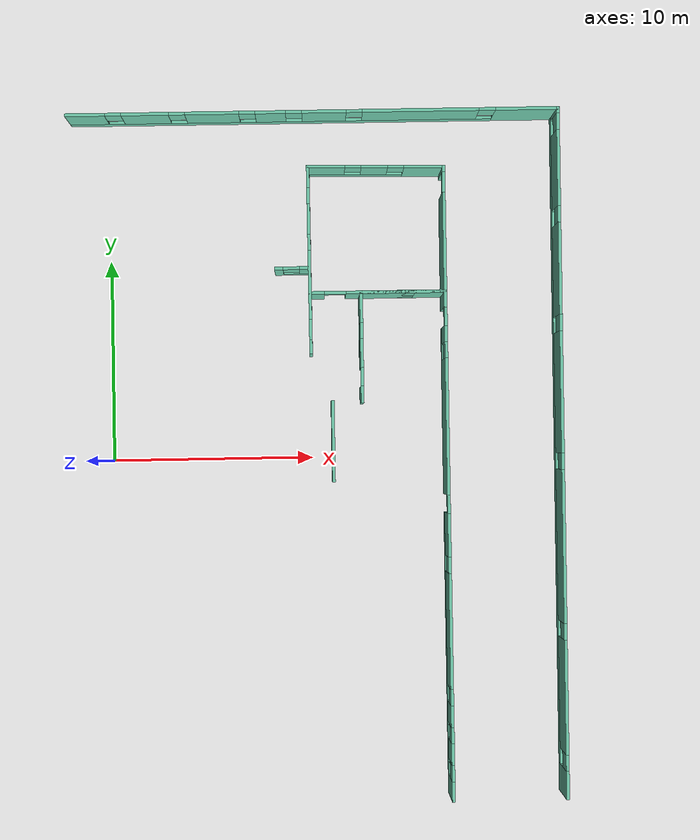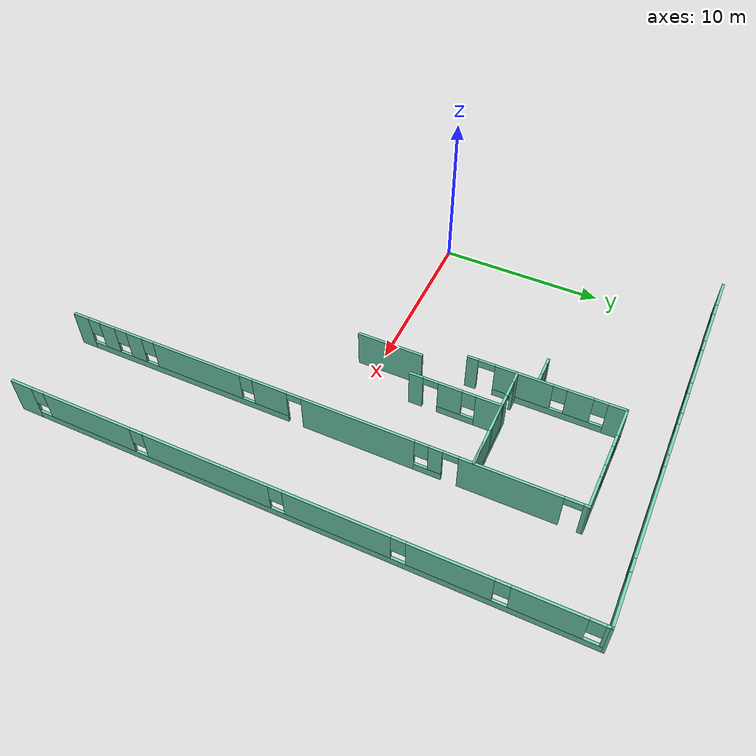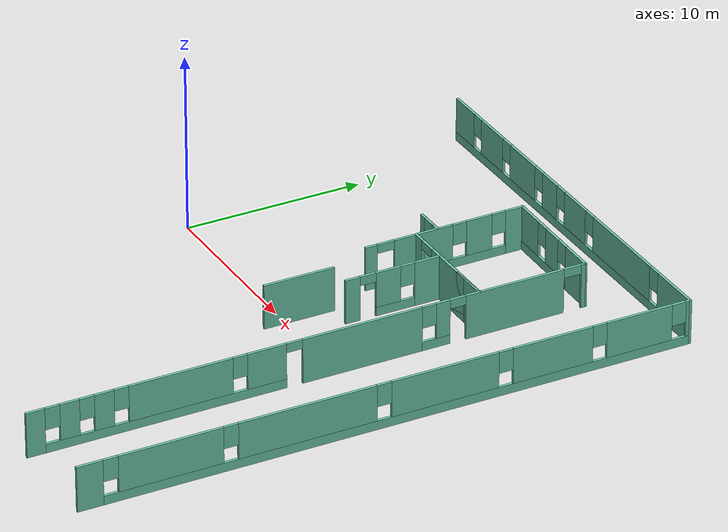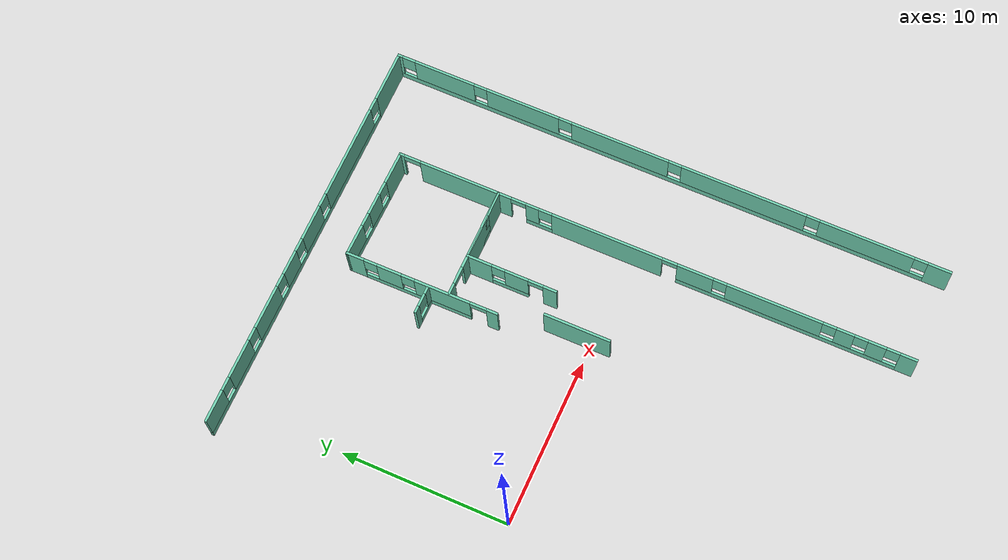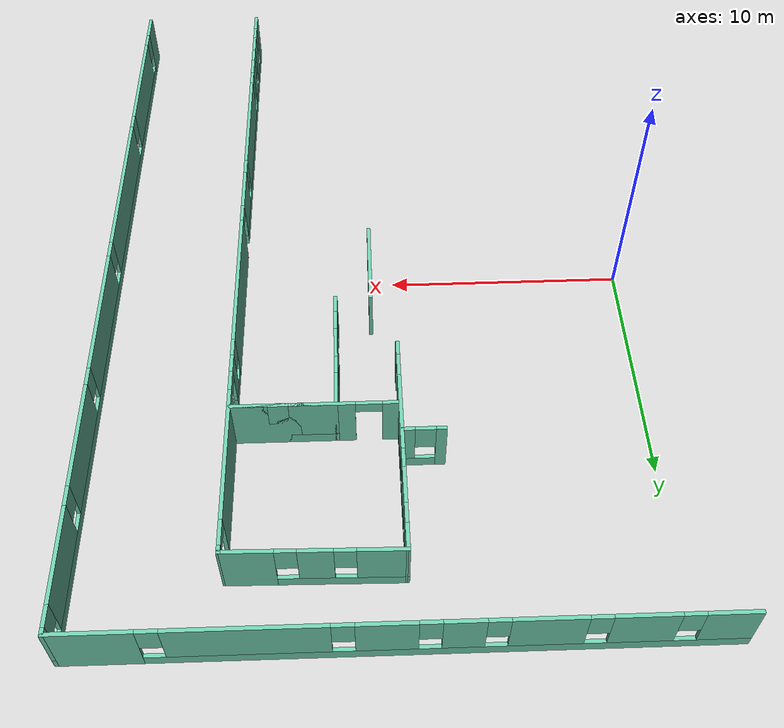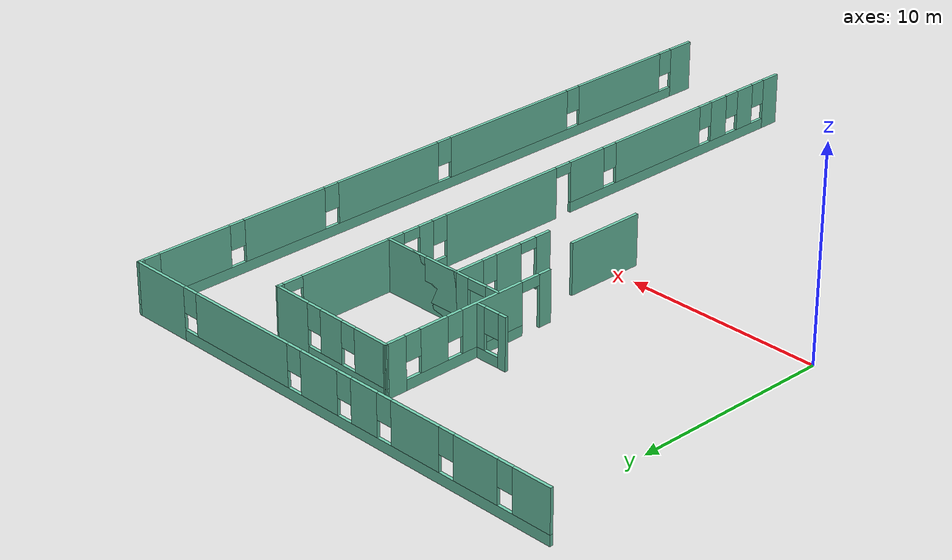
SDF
<sdf version="1.6">
 <model name="Hospital_empty">
  <pose>-0.033999 0.051012 0 0 -0 0</pose>
  <link name="Wall_2">
   <pose>22.303 -0.012012 0 0 -0 1.5708</pose>
   <visual name="Wall_2_Visual_0">
    <pose>-16.2974 0 1.25 0 -0 0</pose>
    <geometry><box><size>1.40521 0.15 2.5</size></box></geometry>
    <material>
     <script><uri>file://media/materials/scripts/gazebo.material</uri><name>Gazebo/Grey</name></script>
     <ambient>0.435294 0.796078 0.67451 1</ambient>
    </material>
   </visual>
   <collision name="Wall_2_Collision_0">
    <geometry><box><size>1.40521 0.15 2.5</size></box></geometry>
    <pose>-16.2974 0 1.25 0 -0 0</pose>
   </collision>
   <visual name="Wall_2_Visual_1">
    <pose>0.702607 0 0.25 0 -0 0</pose>
    <geometry><box><size>32.5948 0.15 0.5</size></box></geometry>
    <material>
     <script><uri>file://media/materials/scripts/gazebo.material</uri><name>Gazebo/Grey</name></script>
     <ambient>0.435294 0.796078 0.67451 1</ambient>
    </material>
   </visual>
   <collision name="Wall_2_Collision_1">
    <geometry><box><size>32.5948 0.15 0.5</size></box></geometry>
    <pose>0.702607 0 0.25 0 -0 0</pose>
   </collision>
   <visual name="Wall_2_Visual_2">
    <pose>-11.9773 0 1.5 0 -0 0</pose>
    <geometry><box><size>5.635 0.15 2</size></box></geometry>
    <material>
     <script><uri>file://media/materials/scripts/gazebo.material</uri><name>Gazebo/Grey</name></script>
     <ambient>0.435294 0.796078 0.67451 1</ambient>
    </material>
   </visual>
   <collision name="Wall_2_Collision_2">
    <geometry><box><size>5.635 0.15 2</size></box></geometry>
    <pose>-11.9773 0 1.5 0 -0 0</pose>
   </collision>
   <visual name="Wall_2_Visual_3">
    <pose>-4.57479 0 1.5 0 -0 0</pose>
    <geometry><box><size>7.57 0.15 2</size></box></geometry>
    <material>
     <script><uri>file://media/materials/scripts/gazebo.material</uri><name>Gazebo/Grey</name></script>
     <ambient>0.435294 0.796078 0.67451 1</ambient>
    </material>
   </visual>
   <collision name="Wall_2_Collision_3">
    <geometry><box><size>7.57 0.15 2</size></box></geometry>
    <pose>-4.57479 0 1.5 0 -0 0</pose>
   </collision>
   <visual name="Wall_2_Visual_4">
    <pose>3.00771 0 1.5 0 -0 0</pose>
    <geometry><box><size>5.995 0.15 2</size></box></geometry>
    <material>
     <script><uri>file://media/materials/scripts/gazebo.material</uri><name>Gazebo/Grey</name></script>
     <ambient>0.435294 0.796078 0.67451 1</ambient>
    </material>
   </visual>
   <collision name="Wall_2_Collision_4">
    <geometry><box><size>5.995 0.15 2</size></box></geometry>
    <pose>3.00771 0 1.5 0 -0 0</pose>
   </collision>
   <visual name="Wall_2_Visual_5">
    <pose>9.0669 0 1.5 0 -0 0</pose>
    <geometry><box><size>4.52336 0.15 2</size></box></geometry>
    <material>
     <script><uri>file://media/materials/scripts/gazebo.material</uri><name>Gazebo/Grey</name></script>
     <ambient>0.435294 0.796078 0.67451 1</ambient>
    </material>
   </visual>
   <collision name="Wall_2_Collision_5">
    <geometry><box><size>4.52336 0.15 2</size></box></geometry>
    <pose>9.0669 0 1.5 0 -0 0</pose>
   </collision>
   <visual name="Wall_2_Visual_6">
    <pose>14.0011 0 1.5 0 -0 0</pose>
    <geometry><box><size>3.745 0.15 2</size></box></geometry>
    <material>
     <script><uri>file://media/materials/scripts/gazebo.material</uri><name>Gazebo/Grey</name></script>
     <ambient>0.435294 0.796078 0.67451 1</ambient>
    </material>
   </visual>
   <collision name="Wall_2_Collision_6">
    <geometry><box><size>3.745 0.15 2</size></box></geometry>
    <pose>14.0011 0 1.5 0 -0 0</pose>
   </collision>
   <visual name="Wall_2_Visual_7">
    <pose>16.8368 0 1.5 0 -0 0</pose>
    <geometry><box><size>0.326426 0.15 2</size></box></geometry>
    <material>
     <script><uri>file://media/materials/scripts/gazebo.material</uri><name>Gazebo/Grey</name></script>
     <ambient>0.435294 0.796078 0.67451 1</ambient>
    </material>
   </visual>
   <collision name="Wall_2_Collision_7">
    <geometry><box><size>0.326426 0.15 2</size></box></geometry>
    <pose>16.8368 0 1.5 0 -0 0</pose>
   </collision>
   <visual name="Wall_2_Visual_8">
    <pose>-15.1948 0 1.9 0 -0 0</pose>
    <geometry><box><size>0.8 0.15 1.2</size></box></geometry>
    <material>
     <script><uri>file://media/materials/scripts/gazebo.material</uri><name>Gazebo/Grey</name></script>
     <ambient>0.435294 0.796078 0.67451 1</ambient>
    </material>
   </visual>
   <collision name="Wall_2_Collision_8">
    <geometry><box><size>0.8 0.15 1.2</size></box></geometry>
    <pose>-15.1948 0 1.9 0 -0 0</pose>
   </collision>
   <visual name="Wall_2_Visual_9">
    <pose>-8.75979 0 1.9 0 -0 0</pose>
    <geometry><box><size>0.8 0.15 1.2</size></box></geometry>
    <material>
     <script><uri>file://media/materials/scripts/gazebo.material</uri><name>Gazebo/Grey</name></script>
     <ambient>0.435294 0.796078 0.67451 1</ambient>
    </material>
   </visual>
   <collision name="Wall_2_Collision_9">
    <geometry><box><size>0.8 0.15 1.2</size></box></geometry>
    <pose>-8.75979 0 1.9 0 -0 0</pose>
   </collision>
   <visual name="Wall_2_Visual_10">
    <pose>-0.389785 0 1.9 0 -0 0</pose>
    <geometry><box><size>0.8 0.15 1.2</size></box></geometry>
    <material>
     <script><uri>file://media/materials/scripts/gazebo.material</uri><name>Gazebo/Grey</name></script>
     <ambient>0.435294 0.796078 0.67451 1</ambient>
    </material>
   </visual>
   <collision name="Wall_2_Collision_10">
    <geometry><box><size>0.8 0.15 1.2</size></box></geometry>
    <pose>-0.389785 0 1.9 0 -0 0</pose>
   </collision>
   <visual name="Wall_2_Visual_11">
    <pose>6.40521 0 1.9 0 -0 0</pose>
    <geometry><box><size>0.8 0.15 1.2</size></box></geometry>
    <material>
     <script><uri>file://media/materials/scripts/gazebo.material</uri><name>Gazebo/Grey</name></script>
     <ambient>0.435294 0.796078 0.67451 1</ambient>
    </material>
   </visual>
   <collision name="Wall_2_Collision_11">
    <geometry><box><size>0.8 0.15 1.2</size></box></geometry>
    <pose>6.40521 0 1.9 0 -0 0</pose>
   </collision>
   <visual name="Wall_2_Visual_12">
    <pose>11.7286 0 1.9 0 -0 0</pose>
    <geometry><box><size>0.8 0.15 1.2</size></box></geometry>
    <material>
     <script><uri>file://media/materials/scripts/gazebo.material</uri><name>Gazebo/Grey</name></script>
     <ambient>0.435294 0.796078 0.67451 1</ambient>
    </material>
   </visual>
   <collision name="Wall_2_Collision_12">
    <geometry><box><size>0.8 0.15 1.2</size></box></geometry>
    <pose>11.7286 0 1.9 0 -0 0</pose>
   </collision>
   <visual name="Wall_2_Visual_13">
    <pose>16.2736 0 1.9 0 -0 0</pose>
    <geometry><box><size>0.8 0.15 1.2</size></box></geometry>
    <material>
     <script><uri>file://media/materials/scripts/gazebo.material</uri><name>Gazebo/Grey</name></script>
     <ambient>0.435294 0.796078 0.67451 1</ambient>
    </material>
   </visual>
   <collision name="Wall_2_Collision_13">
    <geometry><box><size>0.8 0.15 1.2</size></box></geometry>
    <pose>16.2736 0 1.9 0 -0 0</pose>
   </collision>
  </link>
  <link name="Wall_3">
   <pose>10.253 16.913 0 0 -0 3.14159</pose>
   <visual name="Wall_3_Visual_0">
    <pose>-10.5614 0 1.25 0 -0 0</pose>
    <geometry><box><size>3.12716 0.15 2.5</size></box></geometry>
    <material>
     <script><uri>file://media/materials/scripts/gazebo.material</uri><name>Gazebo/Grey</name></script>
     <ambient>0.435294 0.796078 0.67451 1</ambient>
    </material>
   </visual>
   <collision name="Wall_3_Collision_0">
    <geometry><box><size>3.12716 0.15 2.5</size></box></geometry>
    <pose>-10.5614 0 1.25 0 -0 0</pose>
   </collision>
   <visual name="Wall_3_Visual_1">
    <pose>1.56358 0 0.25 0 -0 0</pose>
    <geometry><box><size>21.1228 0.15 0.5</size></box></geometry>
    <material>
     <script><uri>file://media/materials/scripts/gazebo.material</uri><name>Gazebo/Grey</name></script>
     <ambient>0.435294 0.796078 0.67451 1</ambient>
    </material>
   </visual>
   <collision name="Wall_3_Collision_1">
    <geometry><box><size>21.1228 0.15 0.5</size></box></geometry>
    <pose>1.56358 0 0.25 0 -0 0</pose>
   </collision>
   <visual name="Wall_3_Visual_2">
    <pose>-5.33534 0 1.5 0 -0 0</pose>
    <geometry><box><size>5.725 0.15 2</size></box></geometry>
    <material>
     <script><uri>file://media/materials/scripts/gazebo.material</uri><name>Gazebo/Grey</name></script>
     <ambient>0.435294 0.796078 0.67451 1</ambient>
    </material>
   </visual>
   <collision name="Wall_3_Collision_2">
    <geometry><box><size>5.725 0.15 2</size></box></geometry>
    <pose>-5.33534 0 1.5 0 -0 0</pose>
   </collision>
   <visual name="Wall_3_Visual_3">
    <pose>-0.584865 0 1.5 0 -0 0</pose>
    <geometry><box><size>2.17595 0.15 2</size></box></geometry>
    <material>
     <script><uri>file://media/materials/scripts/gazebo.material</uri><name>Gazebo/Grey</name></script>
     <ambient>0.435294 0.796078 0.67451 1</ambient>
    </material>
   </visual>
   <collision name="Wall_3_Collision_3">
    <geometry><box><size>2.17595 0.15 2</size></box></geometry>
    <pose>-0.584865 0 1.5 0 -0 0</pose>
   </collision>
   <visual name="Wall_3_Visual_4">
    <pose>2.05094 0 1.5 0 -0 0</pose>
    <geometry><box><size>1.49565 0.15 2</size></box></geometry>
    <material>
     <script><uri>file://media/materials/scripts/gazebo.material</uri><name>Gazebo/Grey</name></script>
     <ambient>0.435294 0.796078 0.67451 1</ambient>
    </material>
   </visual>
   <collision name="Wall_3_Collision_4">
    <geometry><box><size>1.49565 0.15 2</size></box></geometry>
    <pose>2.05094 0 1.5 0 -0 0</pose>
   </collision>
   <visual name="Wall_3_Visual_5">
    <pose>4.9205 0 1.5 0 -0 0</pose>
    <geometry><box><size>2.64348 0.15 2</size></box></geometry>
    <material>
     <script><uri>file://media/materials/scripts/gazebo.material</uri><name>Gazebo/Grey</name></script>
     <ambient>0.435294 0.796078 0.67451 1</ambient>
    </material>
   </visual>
   <collision name="Wall_3_Collision_5">
    <geometry><box><size>2.64348 0.15 2</size></box></geometry>
    <pose>4.9205 0 1.5 0 -0 0</pose>
   </collision>
   <visual name="Wall_3_Visual_6">
    <pose>8.20746 0 1.5 0 -0 0</pose>
    <geometry><box><size>2.33044 0.15 2</size></box></geometry>
    <material>
     <script><uri>file://media/materials/scripts/gazebo.material</uri><name>Gazebo/Grey</name></script>
     <ambient>0.435294 0.796078 0.67451 1</ambient>
    </material>
   </visual>
   <collision name="Wall_3_Collision_6">
    <geometry><box><size>2.33044 0.15 2</size></box></geometry>
    <pose>8.20746 0 1.5 0 -0 0</pose>
   </collision>
   <visual name="Wall_3_Visual_7">
    <pose>11.1488 0 1.5 0 -0 0</pose>
    <geometry><box><size>1.95233 0.15 2</size></box></geometry>
    <material>
     <script><uri>file://media/materials/scripts/gazebo.material</uri><name>Gazebo/Grey</name></script>
     <ambient>0.435294 0.796078 0.67451 1</ambient>
    </material>
   </visual>
   <collision name="Wall_3_Collision_7">
    <geometry><box><size>1.95233 0.15 2</size></box></geometry>
    <pose>11.1488 0 1.5 0 -0 0</pose>
   </collision>
   <visual name="Wall_3_Visual_8">
    <pose>-8.59784 0 1.9 0 -0 0</pose>
    <geometry><box><size>0.8 0.15 1.2</size></box></geometry>
    <material>
     <script><uri>file://media/materials/scripts/gazebo.material</uri><name>Gazebo/Grey</name></script>
     <ambient>0.435294 0.796078 0.67451 1</ambient>
    </material>
   </visual>
   <collision name="Wall_3_Collision_8">
    <geometry><box><size>0.8 0.15 1.2</size></box></geometry>
    <pose>-8.59784 0 1.9 0 -0 0</pose>
   </collision>
   <visual name="Wall_3_Visual_9">
    <pose>-2.07284 0 1.9 0 -0 0</pose>
    <geometry><box><size>0.8 0.15 1.2</size></box></geometry>
    <material>
     <script><uri>file://media/materials/scripts/gazebo.material</uri><name>Gazebo/Grey</name></script>
     <ambient>0.435294 0.796078 0.67451 1</ambient>
    </material>
   </visual>
   <collision name="Wall_3_Collision_9">
    <geometry><box><size>0.8 0.15 1.2</size></box></geometry>
    <pose>-2.07284 0 1.9 0 -0 0</pose>
   </collision>
   <visual name="Wall_3_Visual_10">
    <pose>0.90311 0 1.9 0 -0 0</pose>
    <geometry><box><size>0.8 0.15 1.2</size></box></geometry>
    <material>
     <script><uri>file://media/materials/scripts/gazebo.material</uri><name>Gazebo/Grey</name></script>
     <ambient>0.435294 0.796078 0.67451 1</ambient>
    </material>
   </visual>
   <collision name="Wall_3_Collision_10">
    <geometry><box><size>0.8 0.15 1.2</size></box></geometry>
    <pose>0.90311 0 1.9 0 -0 0</pose>
   </collision>
   <visual name="Wall_3_Visual_11">
    <pose>3.19876 0 1.9 0 -0 0</pose>
    <geometry><box><size>0.8 0.15 1.2</size></box></geometry>
    <material>
     <script><uri>file://media/materials/scripts/gazebo.material</uri><name>Gazebo/Grey</name></script>
     <ambient>0.435294 0.796078 0.67451 1</ambient>
    </material>
   </visual>
   <collision name="Wall_3_Collision_11">
    <geometry><box><size>0.8 0.15 1.2</size></box></geometry>
    <pose>3.19876 0 1.9 0 -0 0</pose>
   </collision>
   <visual name="Wall_3_Visual_12">
    <pose>6.64224 0 1.9 0 -0 0</pose>
    <geometry><box><size>0.8 0.15 1.2</size></box></geometry>
    <material>
     <script><uri>file://media/materials/scripts/gazebo.material</uri><name>Gazebo/Grey</name></script>
     <ambient>0.435294 0.796078 0.67451 1</ambient>
    </material>
   </visual>
   <collision name="Wall_3_Collision_12">
    <geometry><box><size>0.8 0.15 1.2</size></box></geometry>
    <pose>6.64224 0 1.9 0 -0 0</pose>
   </collision>
   <visual name="Wall_3_Visual_13">
    <pose>9.77267 0 1.9 0 -0 0</pose>
    <geometry><box><size>0.8 0.15 1.2</size></box></geometry>
    <material>
     <script><uri>file://media/materials/scripts/gazebo.material</uri><name>Gazebo/Grey</name></script>
     <ambient>0.435294 0.796078 0.67451 1</ambient>
    </material>
   </visual>
   <collision name="Wall_3_Collision_13">
    <geometry><box><size>0.8 0.15 1.2</size></box></geometry>
    <pose>9.77267 0 1.9 0 -0 0</pose>
   </collision>
  </link>
  <link name="Wall_54">
   <pose>16.6784 -1.42889 0 0 -0 1.57237</pose>
   <visual name="Wall_54_Visual_0">
    <pose>-15.1174 0 1.25 0 -0 0</pose>
    <geometry><box><size>1.01516 0.15 2.5</size></box></geometry>
    <material>
     <script><uri>file://media/materials/scripts/gazebo.material</uri><name>Gazebo/Grey</name></script>
     <ambient>0.435294 0.796078 0.67451 1</ambient>
    </material>
   </visual>
   <collision name="Wall_54_Collision_0">
    <geometry><box><size>1.01516 0.15 2.5</size></box></geometry>
    <pose>-15.1174 0 1.25 0 -0 0</pose>
   </collision>
   <visual name="Wall_54_Visual_1">
    <pose>2.81142 0 1.25 0 -0 0</pose>
    <geometry><box><size>6.71487 0.15 2.5</size></box></geometry>
    <material>
     <script><uri>file://media/materials/scripts/gazebo.material</uri><name>Gazebo/Grey</name></script>
     <ambient>0.435294 0.796078 0.67451 1</ambient>
    </material>
   </visual>
   <collision name="Wall_54_Collision_1">
    <geometry><box><size>6.71487 0.15 2.5</size></box></geometry>
    <pose>2.81142 0 1.25 0 -0 0</pose>
   </collision>
   <visual name="Wall_54_Visual_2">
    <pose>11.474 0 1.25 0 -0 0</pose>
    <geometry><box><size>5.63286 0.15 2.5</size></box></geometry>
    <material>
     <script><uri>file://media/materials/scripts/gazebo.material</uri><name>Gazebo/Grey</name></script>
     <ambient>0.435294 0.796078 0.67451 1</ambient>
    </material>
   </visual>
   <collision name="Wall_54_Collision_2">
    <geometry><box><size>5.63286 0.15 2.5</size></box></geometry>
    <pose>11.474 0 1.25 0 -0 0</pose>
   </collision>
   <visual name="Wall_54_Visual_3">
    <pose>15.4602 0 1.25 0 -0 0</pose>
    <geometry><box><size>0.329522 0.15 2.5</size></box></geometry>
    <material>
     <script><uri>file://media/materials/scripts/gazebo.material</uri><name>Gazebo/Grey</name></script>
     <ambient>0.435294 0.796078 0.67451 1</ambient>
    </material>
   </visual>
   <collision name="Wall_54_Collision_3">
    <geometry><box><size>0.329522 0.15 2.5</size></box></geometry>
    <pose>15.4602 0 1.25 0 -0 0</pose>
   </collision>
   <visual name="Wall_54_Visual_4">
    <pose>-8.02793 0 0.25 0 -0 0</pose>
    <geometry><box><size>13.1638 0.15 0.5</size></box></geometry>
    <material>
     <script><uri>file://media/materials/scripts/gazebo.material</uri><name>Gazebo/Grey</name></script>
     <ambient>0.435294 0.796078 0.67451 1</ambient>
    </material>
   </visual>
   <collision name="Wall_54_Collision_4">
    <geometry><box><size>13.1638 0.15 0.5</size></box></geometry>
    <pose>-8.02793 0 0.25 0 -0 0</pose>
   </collision>
   <visual name="Wall_54_Visual_5">
    <pose>6.96319 0 0.25 0 -0 0</pose>
    <geometry><box><size>1.58869 0.15 0.5</size></box></geometry>
    <material>
     <script><uri>file://media/materials/scripts/gazebo.material</uri><name>Gazebo/Grey</name></script>
     <ambient>0.435294 0.796078 0.67451 1</ambient>
    </material>
   </visual>
   <collision name="Wall_54_Collision_5">
    <geometry><box><size>1.58869 0.15 0.5</size></box></geometry>
    <pose>6.96319 0 0.25 0 -0 0</pose>
   </collision>
   <visual name="Wall_54_Visual_6">
    <pose>-13.2798 0 1.5 0 -0 0</pose>
    <geometry><box><size>1.0601 0.15 2</size></box></geometry>
    <material>
     <script><uri>file://media/materials/scripts/gazebo.material</uri><name>Gazebo/Grey</name></script>
     <ambient>0.435294 0.796078 0.67451 1</ambient>
    </material>
   </visual>
   <collision name="Wall_54_Collision_6">
    <geometry><box><size>1.0601 0.15 2</size></box></geometry>
    <pose>-13.2798 0 1.5 0 -0 0</pose>
   </collision>
   <visual name="Wall_54_Visual_7">
    <pose>-11.4197 0 1.5 0 -0 0</pose>
    <geometry><box><size>1.0601 0.15 2</size></box></geometry>
    <material>
     <script><uri>file://media/materials/scripts/gazebo.material</uri><name>Gazebo/Grey</name></script>
     <ambient>0.435294 0.796078 0.67451 1</ambient>
    </material>
   </visual>
   <collision name="Wall_54_Collision_7">
    <geometry><box><size>1.0601 0.15 2</size></box></geometry>
    <pose>-11.4197 0 1.5 0 -0 0</pose>
   </collision>
   <visual name="Wall_54_Visual_8">
    <pose>-7.2458 0 1.5 0 -0 0</pose>
    <geometry><box><size>5.68767 0.15 2</size></box></geometry>
    <material>
     <script><uri>file://media/materials/scripts/gazebo.material</uri><name>Gazebo/Grey</name></script>
     <ambient>0.435294 0.796078 0.67451 1</ambient>
    </material>
   </visual>
   <collision name="Wall_54_Collision_8">
    <geometry><box><size>5.68767 0.15 2</size></box></geometry>
    <pose>-7.2458 0 1.5 0 -0 0</pose>
   </collision>
   <visual name="Wall_54_Visual_9">
    <pose>-2.52399 0 1.5 0 -0 0</pose>
    <geometry><box><size>2.15595 0.15 2</size></box></geometry>
    <material>
     <script><uri>file://media/materials/scripts/gazebo.material</uri><name>Gazebo/Grey</name></script>
     <ambient>0.435294 0.796078 0.67451 1</ambient>
    </material>
   </visual>
   <collision name="Wall_54_Collision_9">
    <geometry><box><size>2.15595 0.15 2</size></box></geometry>
    <pose>-2.52399 0 1.5 0 -0 0</pose>
   </collision>
   <visual name="Wall_54_Visual_10">
    <pose>-2.52399 0 1.5 0 -0 0</pose>
    <geometry><box><size>2.15595 0.15 2</size></box></geometry>
    <material>
     <script><uri>file://media/materials/scripts/gazebo.material</uri><name>Gazebo/Grey</name></script>
     <ambient>0.435294 0.796078 0.67451 1</ambient>
    </material>
   </visual>
   <collision name="Wall_54_Collision_10">
    <geometry><box><size>2.15595 0.15 2</size></box></geometry>
    <pose>-2.52399 0 1.5 0 -0 0</pose>
   </collision>
   <visual name="Wall_54_Visual_11">
    <pose>7.36319 0 1.5 0 -0 0</pose>
    <geometry><box><size>0.788686 0.15 2</size></box></geometry>
    <material>
     <script><uri>file://media/materials/scripts/gazebo.material</uri><name>Gazebo/Grey</name></script>
     <ambient>0.435294 0.796078 0.67451 1</ambient>
    </material>
   </visual>
   <collision name="Wall_54_Collision_11">
    <geometry><box><size>0.788686 0.15 2</size></box></geometry>
    <pose>7.36319 0 1.5 0 -0 0</pose>
   </collision>
   <visual name="Wall_54_Visual_12">
    <pose>-14.2098 0 1.9 0 -0 0</pose>
    <geometry><box><size>0.8 0.15 1.2</size></box></geometry>
    <material>
     <script><uri>file://media/materials/scripts/gazebo.material</uri><name>Gazebo/Grey</name></script>
     <ambient>0.435294 0.796078 0.67451 1</ambient>
    </material>
   </visual>
   <collision name="Wall_54_Collision_12">
    <geometry><box><size>0.8 0.15 1.2</size></box></geometry>
    <pose>-14.2098 0 1.9 0 -0 0</pose>
   </collision>
   <visual name="Wall_54_Visual_13">
    <pose>6.56885 0 1.9 0 -0 0</pose>
    <geometry><box><size>0.8 0.15 1.2</size></box></geometry>
    <material>
     <script><uri>file://media/materials/scripts/gazebo.material</uri><name>Gazebo/Grey</name></script>
     <ambient>0.435294 0.796078 0.67451 1</ambient>
    </material>
   </visual>
   <collision name="Wall_54_Collision_13">
    <geometry><box><size>0.8 0.15 1.2</size></box></geometry>
    <pose>6.56885 0 1.9 0 -0 0</pose>
   </collision>
   <visual name="Wall_54_Visual_14">
    <pose>-12.3497 0 1.9 0 -0 0</pose>
    <geometry><box><size>0.8 0.15 1.2</size></box></geometry>
    <material>
     <script><uri>file://media/materials/scripts/gazebo.material</uri><name>Gazebo/Grey</name></script>
     <ambient>0.435294 0.796078 0.67451 1</ambient>
    </material>
   </visual>
   <collision name="Wall_54_Collision_14">
    <geometry><box><size>0.8 0.15 1.2</size></box></geometry>
    <pose>-12.3497 0 1.9 0 -0 0</pose>
   </collision>
   <visual name="Wall_54_Visual_15">
    <pose>-10.4896 0 1.9 0 -0 0</pose>
    <geometry><box><size>0.8 0.15 1.2</size></box></geometry>
    <material>
     <script><uri>file://media/materials/scripts/gazebo.material</uri><name>Gazebo/Grey</name></script>
     <ambient>0.435294 0.796078 0.67451 1</ambient>
    </material>
   </visual>
   <collision name="Wall_54_Collision_15">
    <geometry><box><size>0.8 0.15 1.2</size></box></geometry>
    <pose>-10.4896 0 1.9 0 -0 0</pose>
   </collision>
   <visual name="Wall_54_Visual_16">
    <pose>-4.00197 0 1.9 0 -0 0</pose>
    <geometry><box><size>0.8 0.15 1.2</size></box></geometry>
    <material>
     <script><uri>file://media/materials/scripts/gazebo.material</uri><name>Gazebo/Grey</name></script>
     <ambient>0.435294 0.796078 0.67451 1</ambient>
    </material>
   </visual>
   <collision name="Wall_54_Collision_16">
    <geometry><box><size>0.8 0.15 1.2</size></box></geometry>
    <pose>-4.00197 0 1.9 0 -0 0</pose>
   </collision>
   <visual name="Wall_54_Visual_17">
    <pose>14.7929 0 2.25 0 -0 0</pose>
    <geometry><box><size>1.00508 0.15 0.5</size></box></geometry>
    <material>
     <script><uri>file://media/materials/scripts/gazebo.material</uri><name>Gazebo/Grey</name></script>
     <ambient>0.435294 0.796078 0.67451 1</ambient>
    </material>
   </visual>
   <collision name="Wall_54_Collision_17">
    <geometry><box><size>1.00508 0.15 0.5</size></box></geometry>
    <pose>14.7929 0 2.25 0 -0 0</pose>
   </collision>
   <visual name="Wall_54_Visual_18">
    <pose>-0.996017 0 2.25 0 -0 0</pose>
    <geometry><box><size>0.9 0.15 0.5</size></box></geometry>
    <material>
     <script><uri>file://media/materials/scripts/gazebo.material</uri><name>Gazebo/Grey</name></script>
     <ambient>0.435294 0.796078 0.67451 1</ambient>
    </material>
   </visual>
   <collision name="Wall_54_Collision_18">
    <geometry><box><size>0.9 0.15 0.5</size></box></geometry>
    <pose>-0.996017 0 2.25 0 -0 0</pose>
   </collision>
   <visual name="Wall_54_Visual_19">
    <pose>-0.996017 0 2.25 0 -0 0</pose>
    <geometry><box><size>0.9 0.15 0.5</size></box></geometry>
    <material>
     <script><uri>file://media/materials/scripts/gazebo.material</uri><name>Gazebo/Grey</name></script>
     <ambient>0.435294 0.796078 0.67451 1</ambient>
    </material>
   </visual>
   <collision name="Wall_54_Collision_19">
    <geometry><box><size>0.9 0.15 0.5</size></box></geometry>
    <pose>-0.996017 0 2.25 0 -0 0</pose>
   </collision>
   <visual name="Wall_54_Visual_20">
    <pose>8.20754 0 2.25 0 -0 0</pose>
    <geometry><box><size>0.9 0.15 0.5</size></box></geometry>
    <material>
     <script><uri>file://media/materials/scripts/gazebo.material</uri><name>Gazebo/Grey</name></script>
     <ambient>0.435294 0.796078 0.67451 1</ambient>
    </material>
   </visual>
   <collision name="Wall_54_Collision_20">
    <geometry><box><size>0.9 0.15 0.5</size></box></geometry>
    <pose>8.20754 0 2.25 0 -0 0</pose>
   </collision>
  </link>
  <link name="Wall_55">
   <pose>13.327 14.172 0 0 -0 3.12627</pose>
   <visual name="Wall_55_Visual_0">
    <pose>-2.39722 0 1.25 0 -0 0</pose>
    <geometry><box><size>2.01042 0.15 2.5</size></box></geometry>
    <material>
     <script><uri>file://media/materials/scripts/gazebo.material</uri><name>Gazebo/Grey</name></script>
     <ambient>0.435294 0.796078 0.67451 1</ambient>
    </material>
   </visual>
   <collision name="Wall_55_Collision_0">
    <geometry><box><size>2.01042 0.15 2.5</size></box></geometry>
    <pose>-2.39722 0 1.25 0 -0 0</pose>
   </collision>
   <visual name="Wall_55_Visual_1">
    <pose>1.00521 0 0.25 0 -0 0</pose>
    <geometry><box><size>4.79443 0.15 0.5</size></box></geometry>
    <material>
     <script><uri>file://media/materials/scripts/gazebo.material</uri><name>Gazebo/Grey</name></script>
     <ambient>0.435294 0.796078 0.67451 1</ambient>
    </material>
   </visual>
   <collision name="Wall_55_Collision_1">
    <geometry><box><size>4.79443 0.15 0.5</size></box></geometry>
    <pose>1.00521 0 0.25 0 -0 0</pose>
   </collision>
   <visual name="Wall_55_Visual_2">
    <pose>0.057785 0 1.5 0 -0 0</pose>
    <geometry><box><size>1.29957 0.15 2</size></box></geometry>
    <material>
     <script><uri>file://media/materials/scripts/gazebo.material</uri><name>Gazebo/Grey</name></script>
     <ambient>0.435294 0.796078 0.67451 1</ambient>
    </material>
   </visual>
   <collision name="Wall_55_Collision_2">
    <geometry><box><size>1.29957 0.15 2</size></box></geometry>
    <pose>0.057785 0 1.5 0 -0 0</pose>
   </collision>
   <visual name="Wall_55_Visual_3">
    <pose>2.455 0 1.5 0 -0 0</pose>
    <geometry><box><size>1.89485 0.15 2</size></box></geometry>
    <material>
     <script><uri>file://media/materials/scripts/gazebo.material</uri><name>Gazebo/Grey</name></script>
     <ambient>0.435294 0.796078 0.67451 1</ambient>
    </material>
   </visual>
   <collision name="Wall_55_Collision_3">
    <geometry><box><size>1.89485 0.15 2</size></box></geometry>
    <pose>2.455 0 1.5 0 -0 0</pose>
   </collision>
   <visual name="Wall_55_Visual_4">
    <pose>-0.992003 0 1.9 0 -0 0</pose>
    <geometry><box><size>0.8 0.15 1.2</size></box></geometry>
    <material>
     <script><uri>file://media/materials/scripts/gazebo.material</uri><name>Gazebo/Grey</name></script>
     <ambient>0.435294 0.796078 0.67451 1</ambient>
    </material>
   </visual>
   <collision name="Wall_55_Collision_4">
    <geometry><box><size>0.8 0.15 1.2</size></box></geometry>
    <pose>-0.992003 0 1.9 0 -0 0</pose>
   </collision>
   <visual name="Wall_55_Visual_5">
    <pose>1.10757 0 1.9 0 -0 0</pose>
    <geometry><box><size>0.8 0.15 1.2</size></box></geometry>
    <material>
     <script><uri>file://media/materials/scripts/gazebo.material</uri><name>Gazebo/Grey</name></script>
     <ambient>0.435294 0.796078 0.67451 1</ambient>
    </material>
   </visual>
   <collision name="Wall_55_Collision_5">
    <geometry><box><size>0.8 0.15 1.2</size></box></geometry>
    <pose>1.10757 0 1.9 0 -0 0</pose>
   </collision>
  </link>
  <link name="Wall_56">
   <pose>10.0184 9.67299 0 0 0 -1.56675</pose>
   <visual name="Wall_56_Visual_0">
    <pose>-4.0766 0 1.25 0 -0 0</pose>
    <geometry><box><size>1.09681 0.15 2.5</size></box></geometry>
    <material>
     <script><uri>file://media/materials/scripts/gazebo.material</uri><name>Gazebo/Grey</name></script>
     <ambient>0.435294 0.796078 0.67451 1</ambient>
    </material>
   </visual>
   <collision name="Wall_56_Collision_0">
    <geometry><box><size>1.09681 0.15 2.5</size></box></geometry>
    <pose>-4.0766 0 1.25 0 -0 0</pose>
   </collision>
   <visual name="Wall_56_Visual_1">
    <pose>4.28668 0 1.25 0 -0 0</pose>
    <geometry><box><size>0.676642 0.15 2.5</size></box></geometry>
    <material>
     <script><uri>file://media/materials/scripts/gazebo.material</uri><name>Gazebo/Grey</name></script>
     <ambient>0.435294 0.796078 0.67451 1</ambient>
    </material>
   </visual>
   <collision name="Wall_56_Collision_1">
    <geometry><box><size>0.676642 0.15 2.5</size></box></geometry>
    <pose>4.28668 0 1.25 0 -0 0</pose>
   </collision>
   <visual name="Wall_56_Visual_2">
    <pose>-0.289986 0 0.25 0 -0 0</pose>
    <geometry><box><size>6.47642 0.15 0.5</size></box></geometry>
    <material>
     <script><uri>file://media/materials/scripts/gazebo.material</uri><name>Gazebo/Grey</name></script>
     <ambient>0.435294 0.796078 0.67451 1</ambient>
    </material>
   </visual>
   <collision name="Wall_56_Collision_2">
    <geometry><box><size>6.47642 0.15 0.5</size></box></geometry>
    <pose>-0.289986 0 0.25 0 -0 0</pose>
   </collision>
   <visual name="Wall_56_Visual_3">
    <pose>-1.98322 0 1.5 0 -0 0</pose>
    <geometry><box><size>1.48995 0.15 2</size></box></geometry>
    <material>
     <script><uri>file://media/materials/scripts/gazebo.material</uri><name>Gazebo/Grey</name></script>
     <ambient>0.435294 0.796078 0.67451 1</ambient>
    </material>
   </visual>
   <collision name="Wall_56_Collision_3">
    <geometry><box><size>1.48995 0.15 2</size></box></geometry>
    <pose>-1.98322 0 1.5 0 -0 0</pose>
   </collision>
   <visual name="Wall_56_Visual_4">
    <pose>1.25499 0 1.5 0 -0 0</pose>
    <geometry><box><size>3.38647 0.15 2</size></box></geometry>
    <material>
     <script><uri>file://media/materials/scripts/gazebo.material</uri><name>Gazebo/Grey</name></script>
     <ambient>0.435294 0.796078 0.67451 1</ambient>
    </material>
   </visual>
   <collision name="Wall_56_Collision_4">
    <geometry><box><size>3.38647 0.15 2</size></box></geometry>
    <pose>1.25499 0 1.5 0 -0 0</pose>
   </collision>
   <visual name="Wall_56_Visual_5">
    <pose>-3.12819 0 1.9 0 -0 0</pose>
    <geometry><box><size>0.8 0.15 1.2</size></box></geometry>
    <material>
     <script><uri>file://media/materials/scripts/gazebo.material</uri><name>Gazebo/Grey</name></script>
     <ambient>0.435294 0.796078 0.67451 1</ambient>
    </material>
   </visual>
   <collision name="Wall_56_Collision_5">
    <geometry><box><size>0.8 0.15 1.2</size></box></geometry>
    <pose>-3.12819 0 1.9 0 -0 0</pose>
   </collision>
   <visual name="Wall_56_Visual_6">
    <pose>-0.838246 0 1.9 0 -0 0</pose>
    <geometry><box><size>0.8 0.15 1.2</size></box></geometry>
    <material>
     <script><uri>file://media/materials/scripts/gazebo.material</uri><name>Gazebo/Grey</name></script>
     <ambient>0.435294 0.796078 0.67451 1</ambient>
    </material>
   </visual>
   <collision name="Wall_56_Collision_6">
    <geometry><box><size>0.8 0.15 1.2</size></box></geometry>
    <pose>-0.838246 0 1.9 0 -0 0</pose>
   </collision>
   <visual name="Wall_56_Visual_7">
    <pose>3.44829 0 2.25 0 -0 0</pose>
    <geometry><box><size>1.00013 0.15 0.5</size></box></geometry>
    <material>
     <script><uri>file://media/materials/scripts/gazebo.material</uri><name>Gazebo/Grey</name></script>
     <ambient>0.435294 0.796078 0.67451 1</ambient>
    </material>
   </visual>
   <collision name="Wall_56_Collision_7">
    <geometry><box><size>1.00013 0.15 0.5</size></box></geometry>
    <pose>3.44829 0 2.25 0 -0 0</pose>
   </collision>
  </link>
  <link name="Wall_63">
   <pose>9.171 9.25499 0 0 -0 0</pose>
   <visual name="Wall_63_Visual_0">
    <pose>-0.664042 0 1.25 0 -0 0</pose>
    <geometry><box><size>0.421916 0.15 2.5</size></box></geometry>
    <material>
     <script><uri>file://media/materials/scripts/gazebo.material</uri><name>Gazebo/Grey</name></script>
     <ambient>0.435294 0.796078 0.67451 1</ambient>
    </material>
   </visual>
   <collision name="Wall_63_Collision_0">
    <geometry><box><size>0.421916 0.15 2.5</size></box></geometry>
    <pose>-0.664042 0 1.25 0 -0 0</pose>
   </collision>
   <visual name="Wall_63_Visual_1">
    <pose>0.210958 0 0.25 0 -0 0</pose>
    <geometry><box><size>1.32808 0.15 0.5</size></box></geometry>
    <material>
     <script><uri>file://media/materials/scripts/gazebo.material</uri><name>Gazebo/Grey</name></script>
     <ambient>0.435294 0.796078 0.67451 1</ambient>
    </material>
   </visual>
   <collision name="Wall_63_Collision_1">
    <geometry><box><size>1.32808 0.15 0.5</size></box></geometry>
    <pose>0.210958 0 0.25 0 -0 0</pose>
   </collision>
   <visual name="Wall_63_Visual_2">
    <pose>0.610958 0 1.5 0 -0 0</pose>
    <geometry><box><size>0.528084 0.15 2</size></box></geometry>
    <material>
     <script><uri>file://media/materials/scripts/gazebo.material</uri><name>Gazebo/Grey</name></script>
     <ambient>0.435294 0.796078 0.67451 1</ambient>
    </material>
   </visual>
   <collision name="Wall_63_Collision_2">
    <geometry><box><size>0.528084 0.15 2</size></box></geometry>
    <pose>0.610958 0 1.5 0 -0 0</pose>
   </collision>
   <visual name="Wall_63_Visual_3">
    <pose>-0.053084 0 1.9 0 -0 0</pose>
    <geometry><box><size>0.8 0.15 1.2</size></box></geometry>
    <material>
     <script><uri>file://media/materials/scripts/gazebo.material</uri><name>Gazebo/Grey</name></script>
     <ambient>0.435294 0.796078 0.67451 1</ambient>
    </material>
   </visual>
   <collision name="Wall_63_Collision_3">
    <geometry><box><size>0.8 0.15 1.2</size></box></geometry>
    <pose>-0.053084 0 1.9 0 -0 0</pose>
   </collision>
  </link>
  <link name="Wall_65">
   <pose>13.328 8.02099 0 0 -0 0</pose>
   <visual name="Wall_65_Visual_0">
    <pose>-2.98672 0 1.25 0 -0 0</pose>
    <geometry><box><size>0.776568 0.15 2.5</size></box></geometry>
    <material>
     <script><uri>file://media/materials/scripts/gazebo.material</uri><name>Gazebo/Grey</name></script>
     <ambient>0.435294 0.796078 0.67451 1</ambient>
    </material>
   </visual>
   <collision name="Wall_65_Collision_0">
    <geometry><box><size>0.776568 0.15 2.5</size></box></geometry>
    <pose>-2.98672 0 1.25 0 -0 0</pose>
   </collision>
   <visual name="Wall_65_Visual_1">
    <pose>0.91356 0 1.25 0 -0 0</pose>
    <geometry><box><size>4.92288 0.15 2.5</size></box></geometry>
    <material>
     <script><uri>file://media/materials/scripts/gazebo.material</uri><name>Gazebo/Grey</name></script>
     <ambient>0.435294 0.796078 0.67451 1</ambient>
    </material>
   </visual>
   <collision name="Wall_65_Collision_1">
    <geometry><box><size>4.92288 0.15 2.5</size></box></geometry>
    <pose>0.91356 0 1.25 0 -0 0</pose>
   </collision>
   <visual name="Wall_65_Visual_2">
    <pose>-2.07316 0 2.25 0 -0 0</pose>
    <geometry><box><size>1.05055 0.15 0.5</size></box></geometry>
    <material>
     <script><uri>file://media/materials/scripts/gazebo.material</uri><name>Gazebo/Grey</name></script>
     <ambient>0.435294 0.796078 0.67451 1</ambient>
    </material>
   </visual>
   <collision name="Wall_65_Collision_2">
    <geometry><box><size>1.05055 0.15 0.5</size></box></geometry>
    <pose>-2.07316 0 2.25 0 -0 0</pose>
   </collision>
  </link>
  <link name="Wall_66">
   <pose>14.578 8.02099 0 0 -0 3.14159</pose>
   <visual name="Wall_66_Visual_0">
    <pose>-1.35818 0 1.25 0 -0 0</pose>
    <geometry><box><size>1.53364 0.15 2.5</size></box></geometry>
    <material>
     <script><uri>file://media/materials/scripts/gazebo.material</uri><name>Gazebo/Grey</name></script>
     <ambient>0.435294 0.796078 0.67451 1</ambient>
    </material>
   </visual>
   <collision name="Wall_66_Collision_0">
    <geometry><box><size>1.53364 0.15 2.5</size></box></geometry>
    <pose>-1.35818 0 1.25 0 -0 0</pose>
   </collision>
   <visual name="Wall_66_Visual_1">
    <pose>0.766823 0 0.25 0 -0 0</pose>
    <geometry><box><size>2.71636 0.15 0.5</size></box></geometry>
    <material>
     <script><uri>file://media/materials/scripts/gazebo.material</uri><name>Gazebo/Grey</name></script>
     <ambient>0.435294 0.796078 0.67451 1</ambient>
    </material>
   </visual>
   <collision name="Wall_66_Collision_1">
    <geometry><box><size>2.71636 0.15 0.5</size></box></geometry>
    <pose>0.766823 0 0.25 0 -0 0</pose>
   </collision>
   <visual name="Wall_66_Visual_2">
    <pose>1.16682 0 1.5 0 -0 0</pose>
    <geometry><box><size>1.91636 0.15 2</size></box></geometry>
    <material>
     <script><uri>file://media/materials/scripts/gazebo.material</uri><name>Gazebo/Grey</name></script>
     <ambient>0.435294 0.796078 0.67451 1</ambient>
    </material>
   </visual>
   <collision name="Wall_66_Collision_2">
    <geometry><box><size>1.91636 0.15 2</size></box></geometry>
    <pose>1.16682 0 1.5 0 -0 0</pose>
   </collision>
   <visual name="Wall_66_Visual_3">
    <pose>-0.191355 0 1.9 0 -0 0</pose>
    <geometry><box><size>0.8 0.15 1.2</size></box></geometry>
    <material>
     <script><uri>file://media/materials/scripts/gazebo.material</uri><name>Gazebo/Grey</name></script>
     <ambient>0.435294 0.796078 0.67451 1</ambient>
    </material>
   </visual>
   <collision name="Wall_66_Collision_3">
    <geometry><box><size>0.8 0.15 1.2</size></box></geometry>
    <pose>-0.191355 0 1.9 0 -0 0</pose>
   </collision>
  </link>
  <link name="Wall_67">
   <pose>12.528 5.34599 0 0 0 -1.5708</pose>
   <visual name="Wall_67_Visual_0">
    <pose>-1.97675 0 1.25 0 -0 0</pose>
    <geometry><box><size>1.54651 0.15 2.5</size></box></geometry>
    <material>
     <script><uri>file://media/materials/scripts/gazebo.material</uri><name>Gazebo/Grey</name></script>
     <ambient>0.435294 0.796078 0.67451 1</ambient>
    </material>
   </visual>
   <collision name="Wall_67_Collision_0">
    <geometry><box><size>1.54651 0.15 2.5</size></box></geometry>
    <pose>-1.97675 0 1.25 0 -0 0</pose>
   </collision>
   <visual name="Wall_67_Visual_1">
    <pose>2.33158 0 1.25 0 -0 0</pose>
    <geometry><box><size>0.836844 0.15 2.5</size></box></geometry>
    <material>
     <script><uri>file://media/materials/scripts/gazebo.material</uri><name>Gazebo/Grey</name></script>
     <ambient>0.435294 0.796078 0.67451 1</ambient>
    </material>
   </visual>
   <collision name="Wall_67_Collision_1">
    <geometry><box><size>0.836844 0.15 2.5</size></box></geometry>
    <pose>2.33158 0 1.25 0 -0 0</pose>
   </collision>
   <visual name="Wall_67_Visual_2">
    <pose>-0.09517 0 0.25 0 -0 0</pose>
    <geometry><box><size>2.21665 0.15 0.5</size></box></geometry>
    <material>
     <script><uri>file://media/materials/scripts/gazebo.material</uri><name>Gazebo/Grey</name></script>
     <ambient>0.435294 0.796078 0.67451 1</ambient>
    </material>
   </visual>
   <collision name="Wall_67_Collision_2">
    <geometry><box><size>2.21665 0.15 0.5</size></box></geometry>
    <pose>-0.09517 0 0.25 0 -0 0</pose>
   </collision>
   <visual name="Wall_67_Visual_3">
    <pose>0.30483 0 1.5 0 -0 0</pose>
    <geometry><box><size>1.41665 0.15 2</size></box></geometry>
    <material>
     <script><uri>file://media/materials/scripts/gazebo.material</uri><name>Gazebo/Grey</name></script>
     <ambient>0.435294 0.796078 0.67451 1</ambient>
    </material>
   </visual>
   <collision name="Wall_67_Collision_3">
    <geometry><box><size>1.41665 0.15 2</size></box></geometry>
    <pose>0.30483 0 1.5 0 -0 0</pose>
   </collision>
   <visual name="Wall_67_Visual_4">
    <pose>-0.803495 0 1.9 0 -0 0</pose>
    <geometry><box><size>0.8 0.15 1.2</size></box></geometry>
    <material>
     <script><uri>file://media/materials/scripts/gazebo.material</uri><name>Gazebo/Grey</name></script>
     <ambient>0.435294 0.796078 0.67451 1</ambient>
    </material>
   </visual>
   <collision name="Wall_67_Collision_4">
    <geometry><box><size>0.8 0.15 1.2</size></box></geometry>
    <pose>-0.803495 0 1.9 0 -0 0</pose>
   </collision>
   <visual name="Wall_67_Visual_5">
    <pose>1.46316 0 2.25 0 -0 0</pose>
    <geometry><box><size>0.9 0.15 0.5</size></box></geometry>
    <material>
     <script><uri>file://media/materials/scripts/gazebo.material</uri><name>Gazebo/Grey</name></script>
     <ambient>0.435294 0.796078 0.67451 1</ambient>
    </material>
   </visual>
   <collision name="Wall_67_Collision_5">
    <geometry><box><size>0.9 0.15 0.5</size></box></geometry>
    <pose>1.46316 0 2.25 0 -0 0</pose>
   </collision>
  </link>
  <link name="Wall_92">
   <collision name="Wall_92_Collision">
    <geometry><box><size>4 0.15 2.5</size></box></geometry>
    <pose>0 0 1.25 0 -0 0</pose>
   </collision>
   <visual name="Wall_92_Visual">
    <pose>0 0 1.25 0 -0 0</pose>
    <geometry><box><size>4 0.15 2.5</size></box></geometry>
    <material>
     <script><uri>file://media/materials/scripts/gazebo.material</uri><name>Gazebo/Grey</name></script>
     <ambient>0.435294 0.796078 0.67451 1</ambient>
    </material>
   </visual>
   <pose>11.061 0.739988 0 0 0 -1.5708</pose>
  </link>
  <static>1</static>
 </model>
</sdf>
